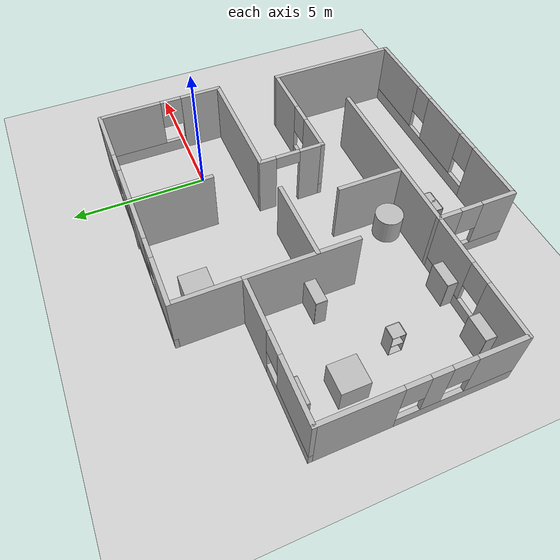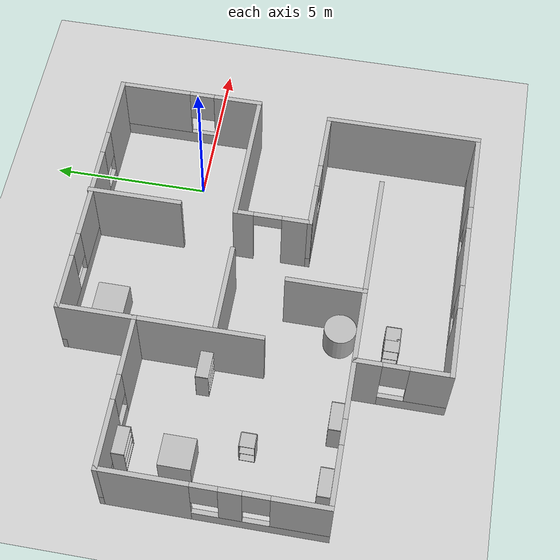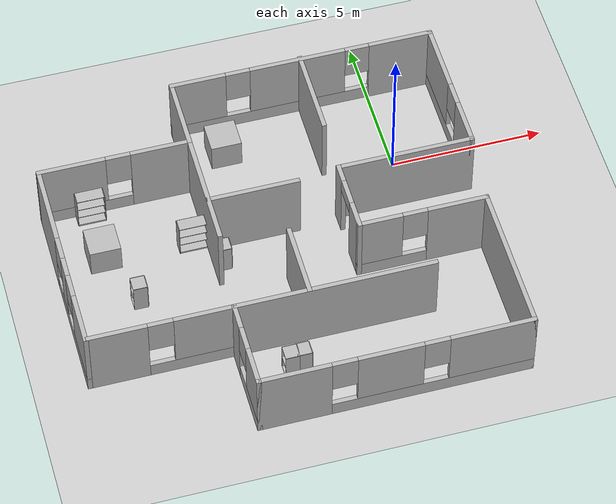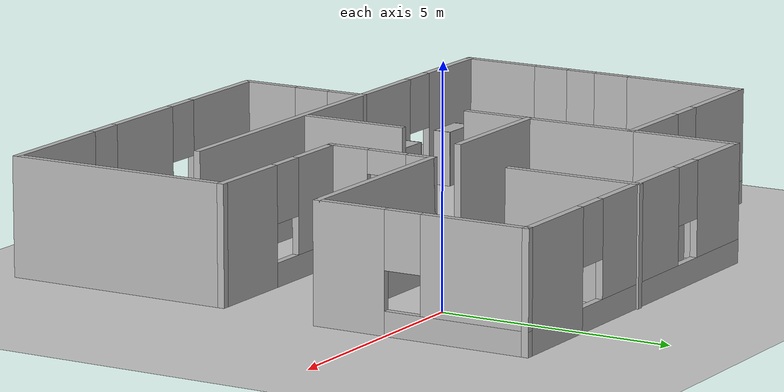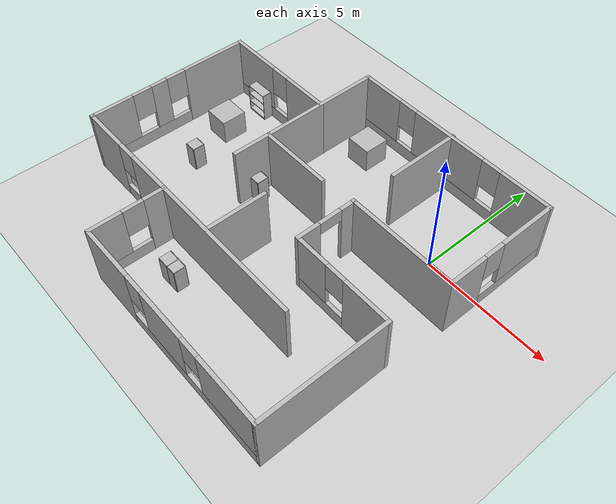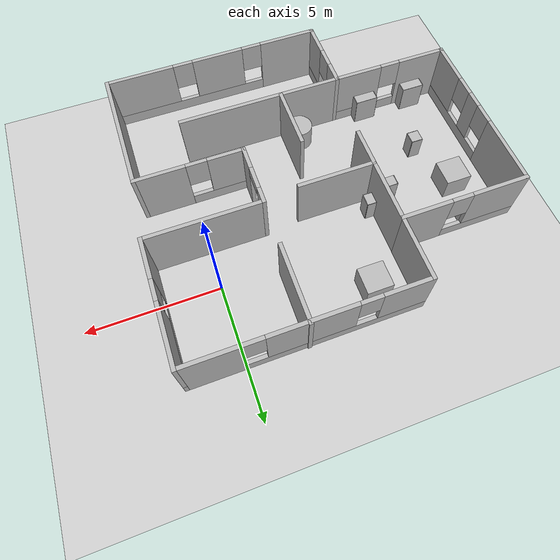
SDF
<sdf version="1.7">
 <world name="default">
  <model name="ground_plane">
   <static>1</static>
   <link name="link">
    <collision name="collision">
     <geometry><plane><normal>0 0 1</normal><size>100 100</size></plane></geometry>
     <surface><friction><ode><mu>100</mu><mu2>50</mu2></ode></friction></surface>
    </collision>
    <visual name="visual">
     <cast_shadows>0</cast_shadows>
     <geometry><plane><normal>0 0 1</normal><size>100 100</size></plane></geometry>
    </visual>
   </link>
  </model>
  <model name="room">
   <pose>-4.625 -2.82814 0 0 -0 0</pose>
   <link name="Wall_0">
    <collision name="Wall_0_Collision">
     <geometry><box><size>4.5 0.15 2.5</size></box></geometry>
     <pose>0 0 1.25 0 -0 0</pose>
    </collision>
    <visual name="Wall_0_Visual">
     <pose>0 0 1.25 0 -0 0</pose>
     <geometry><box><size>4.5 0.15 2.5</size></box></geometry>
     <ambient>1 1 1 1</ambient>
     <meta><layer>0</layer></meta>
    </visual>
    <pose>4.55 1.27814 0 0 -0 0</pose>
   </link>
   <link name="Wall_1">
    <pose>6.725 3.57814 0 0 -0 1.5708</pose>
    <visual name="Wall_1_Visual_0">
     <pose>-1.57759 0 1.25 0 -0 0</pose>
     <geometry><box><size>1.59481 0.15 2.5</size></box></geometry>
     <ambient>1 1 1 1</ambient>
     <meta><layer>0</layer></meta>
    </visual>
    <collision name="Wall_1_Collision_0">
     <geometry><box><size>1.59481 0.15 2.5</size></box></geometry>
     <pose>-1.57759 0 1.25 0 -0 0</pose>
    </collision>
    <visual name="Wall_1_Visual_1">
     <pose>0.797406 0 0.25 0 -0 0</pose>
     <geometry><box><size>3.15519 0.15 0.5</size></box></geometry>
     <ambient>1 1 1 1</ambient>
     <meta><layer>0</layer></meta>
    </visual>
    <collision name="Wall_1_Collision_1">
     <geometry><box><size>3.15519 0.15 0.5</size></box></geometry>
     <pose>0.797406 0 0.25 0 -0 0</pose>
    </collision>
    <visual name="Wall_1_Visual_2">
     <pose>1.19741 0 1.5 0 -0 0</pose>
     <geometry><box><size>2.35519 0.15 2</size></box></geometry>
     <ambient>1 1 1 1</ambient>
     <meta><layer>0</layer></meta>
    </visual>
    <collision name="Wall_1_Collision_2">
     <geometry><box><size>2.35519 0.15 2</size></box></geometry>
     <pose>1.19741 0 1.5 0 -0 0</pose>
    </collision>
    <visual name="Wall_1_Visual_3">
     <pose>-0.380187 0 1.9 0 -0 0</pose>
     <geometry><box><size>0.8 0.15 1.2</size></box></geometry>
     <ambient>1 1 1 1</ambient>
     <meta><layer>0</layer></meta>
    </visual>
    <collision name="Wall_1_Collision_3">
     <geometry><box><size>0.8 0.15 1.2</size></box></geometry>
     <pose>-0.380187 0 1.9 0 -0 0</pose>
    </collision>
   </link>
   <link name="Wall_10">
    <pose>4.425 -1.07186 0 0 -0 3.14159</pose>
    <visual name="Wall_10_Visual_0">
     <pose>-1.13522 0 1.25 0 -0 0</pose>
     <geometry><box><size>1.97956 0.15 2.5</size></box></geometry>
     <ambient>1 1 1 1</ambient>
     <meta><layer>0</layer></meta>
    </visual>
    <collision name="Wall_10_Collision_0">
     <geometry><box><size>1.97956 0.15 2.5</size></box></geometry>
     <pose>-1.13522 0 1.25 0 -0 0</pose>
    </collision>
    <visual name="Wall_10_Visual_1">
     <pose>0.989779 0 0.25 0 -0 0</pose>
     <geometry><box><size>2.27044 0.15 0.5</size></box></geometry>
     <ambient>1 1 1 1</ambient>
     <meta><layer>0</layer></meta>
    </visual>
    <collision name="Wall_10_Collision_1">
     <geometry><box><size>2.27044 0.15 0.5</size></box></geometry>
     <pose>0.989779 0 0.25 0 -0 0</pose>
    </collision>
    <visual name="Wall_10_Visual_2">
     <pose>1.38978 0 1.5 0 -0 0</pose>
     <geometry><box><size>1.47044 0.15 2</size></box></geometry>
     <ambient>1 1 1 1</ambient>
     <meta><layer>0</layer></meta>
    </visual>
    <collision name="Wall_10_Collision_2">
     <geometry><box><size>1.47044 0.15 2</size></box></geometry>
     <pose>1.38978 0 1.5 0 -0 0</pose>
    </collision>
    <visual name="Wall_10_Visual_3">
     <pose>0.254559 0 1.9 0 -0 0</pose>
     <geometry><box><size>0.8 0.15 1.2</size></box></geometry>
     <ambient>1 1 1 1</ambient>
     <meta><layer>0</layer></meta>
    </visual>
    <collision name="Wall_10_Collision_3">
     <geometry><box><size>0.8 0.15 1.2</size></box></geometry>
     <pose>0.254559 0 1.9 0 -0 0</pose>
    </collision>
   </link>
   <link name="Wall_12">
    <pose>2.375 0.103141 0 0 -0 1.5708</pose>
    <visual name="Wall_12_Visual_0">
     <pose>-0.77485 0 1.25 0 -0 0</pose>
     <geometry><box><size>0.950299 0.15 2.5</size></box></geometry>
     <ambient>1 1 1 1</ambient>
     <meta><layer>0</layer></meta>
    </visual>
    <collision name="Wall_12_Collision_0">
     <geometry><box><size>0.950299 0.15 2.5</size></box></geometry>
     <pose>-0.77485 0 1.25 0 -0 0</pose>
    </collision>
    <visual name="Wall_12_Visual_1">
     <pose>0.92515 0 1.25 0 -0 0</pose>
     <geometry><box><size>0.649701 0.15 2.5</size></box></geometry>
     <ambient>1 1 1 1</ambient>
     <meta><layer>0</layer></meta>
    </visual>
    <collision name="Wall_12_Collision_1">
     <geometry><box><size>0.649701 0.15 2.5</size></box></geometry>
     <pose>0.92515 0 1.25 0 -0 0</pose>
    </collision>
    <visual name="Wall_12_Visual_2">
     <pose>0.150299 0 2.25 0 -0 0</pose>
     <geometry><box><size>0.9 0.15 0.5</size></box></geometry>
     <ambient>1 1 1 1</ambient>
     <meta><layer>0</layer></meta>
    </visual>
    <collision name="Wall_12_Collision_2">
     <geometry><box><size>0.9 0.15 0.5</size></box></geometry>
     <pose>0.150299 0 2.25 0 -0 0</pose>
    </collision>
   </link>
   <link name="Wall_14">
    <collision name="Wall_14_Collision">
     <geometry><box><size>4 0.15 2.5</size></box></geometry>
     <pose>0 0 1.25 0 -0 0</pose>
    </collision>
    <visual name="Wall_14_Visual">
     <pose>0 0 1.25 0 -0 0</pose>
     <geometry><box><size>4 0.15 2.5</size></box></geometry>
     <ambient>1 1 1 1</ambient>
     <meta><layer>0</layer></meta>
    </visual>
    <pose>-1.875 1.60314 0 0 -0 -1.5708</pose>
   </link>
   <link name="Wall_16">
    <collision name="Wall_16_Collision">
     <geometry><box><size>3 0.15 2.5</size></box></geometry>
     <pose>0 0 1.25 0 -0 0</pose>
    </collision>
    <visual name="Wall_16_Visual">
     <pose>0 0 1.25 0 -0 0</pose>
     <geometry><box><size>3 0.15 2.5</size></box></geometry>
     <ambient>1 1 1 1</ambient>
     <meta><layer>0</layer></meta>
    </visual>
    <pose>2.38903 4.49686 0 0 -0 -1.5708</pose>
   </link>
   <link name="Wall_18">
    <collision name="Wall_18_Collision">
     <geometry><box><size>6.5 0.15 2.5</size></box></geometry>
     <pose>0 0 1.25 0 -0 0</pose>
    </collision>
    <visual name="Wall_18_Visual">
     <pose>0 0 1.25 0 -0 0</pose>
     <geometry><box><size>6.5 0.15 2.5</size></box></geometry>
     <ambient>1 1 1 1</ambient>
     <meta><layer>0</layer></meta>
    </visual>
    <pose>1.05 -3.07186 0 0 -0 0</pose>
   </link>
   <link name="Wall_2">
    <pose>2.425 5.87814 0 0 -0 3.14159</pose>
    <visual name="Wall_2_Visual_0">
     <pose>-3.30712 0 1.25 0 -0 0</pose>
     <geometry><box><size>2.13576 0.15 2.5</size></box></geometry>
     <ambient>1 1 1 1</ambient>
     <meta><layer>0</layer></meta>
    </visual>
    <collision name="Wall_2_Collision_0">
     <geometry><box><size>2.13576 0.15 2.5</size></box></geometry>
     <pose>-3.30712 0 1.25 0 -0 0</pose>
    </collision>
    <visual name="Wall_2_Visual_1">
     <pose>1.06788 0 0.25 0 -0 0</pose>
     <geometry><box><size>6.61424 0.15 0.5</size></box></geometry>
     <ambient>1 1 1 1</ambient>
     <meta><layer>0</layer></meta>
    </visual>
    <collision name="Wall_2_Collision_1">
     <geometry><box><size>6.61424 0.15 0.5</size></box></geometry>
     <pose>1.06788 0 0.25 0 -0 0</pose>
    </collision>
    <visual name="Wall_2_Visual_2">
     <pose>0.145143 0 1.5 0 -0 0</pose>
     <geometry><box><size>3.16877 0.15 2</size></box></geometry>
     <ambient>1 1 1 1</ambient>
     <meta><layer>0</layer></meta>
    </visual>
    <collision name="Wall_2_Collision_2">
     <geometry><box><size>3.16877 0.15 2</size></box></geometry>
     <pose>0.145143 0 1.5 0 -0 0</pose>
    </collision>
    <visual name="Wall_2_Visual_3">
     <pose>3.45226 0 1.5 0 -0 0</pose>
     <geometry><box><size>1.84547 0.15 2</size></box></geometry>
     <ambient>1 1 1 1</ambient>
     <meta><layer>0</layer></meta>
    </visual>
    <collision name="Wall_2_Collision_3">
     <geometry><box><size>1.84547 0.15 2</size></box></geometry>
     <pose>3.45226 0 1.5 0 -0 0</pose>
    </collision>
    <visual name="Wall_2_Visual_4">
     <pose>-1.83924 0 1.9 0 -0 0</pose>
     <geometry><box><size>0.8 0.15 1.2</size></box></geometry>
     <ambient>1 1 1 1</ambient>
     <meta><layer>0</layer></meta>
    </visual>
    <collision name="Wall_2_Collision_4">
     <geometry><box><size>0.8 0.15 1.2</size></box></geometry>
     <pose>-1.83924 0 1.9 0 -0 0</pose>
    </collision>
    <visual name="Wall_2_Visual_5">
     <pose>2.12953 0 1.9 0 -0 0</pose>
     <geometry><box><size>0.8 0.15 1.2</size></box></geometry>
     <ambient>1 1 1 1</ambient>
     <meta><layer>0</layer></meta>
    </visual>
    <collision name="Wall_2_Collision_5">
     <geometry><box><size>0.8 0.15 1.2</size></box></geometry>
     <pose>2.12953 0 1.9 0 -0 0</pose>
    </collision>
   </link>
   <link name="Wall_20">
    <collision name="Wall_20_Collision">
     <geometry><box><size>3 0.15 2.5</size></box></geometry>
     <pose>0 0 1.25 0 -0 0</pose>
    </collision>
    <visual name="Wall_20_Visual">
     <pose>0 0 1.25 0 -0 0</pose>
     <geometry><box><size>3 0.15 2.5</size></box></geometry>
     <ambient>1 1 1 1</ambient>
     <meta><layer>0</layer></meta>
    </visual>
    <pose>-0.433206 1.10833 0 0 -0 0</pose>
   </link>
   <link name="Wall_22">
    <collision name="Wall_22_Collision">
     <geometry><box><size>2.5 0.15 2.5</size></box></geometry>
     <pose>0 0 1.25 0 -0 0</pose>
    </collision>
    <visual name="Wall_22_Visual">
     <pose>0 0 1.25 0 -0 0</pose>
     <geometry><box><size>2.5 0.15 2.5</size></box></geometry>
     <ambient>1 1 1 1</ambient>
     <meta><layer>0</layer></meta>
    </visual>
    <pose>0.230018 -1.89312 0 0 -0 1.5708</pose>
   </link>
   <link name="Wall_3">
    <collision name="Wall_3_Collision">
     <geometry><box><size>2.5 0.15 2.5</size></box></geometry>
     <pose>0 0 1.25 0 -0 0</pose>
    </collision>
    <visual name="Wall_3_Visual">
     <pose>0 0 1.25 0 -0 0</pose>
     <geometry><box><size>2.5 0.15 2.5</size></box></geometry>
     <ambient>1 1 1 1</ambient>
     <meta><layer>0</layer></meta>
    </visual>
    <pose>-1.875 4.70314 0 0 -0 -1.5708</pose>
   </link>
   <link name="Wall_4">
    <pose>-4.3 3.52814 0 0 -0 3.14159</pose>
    <visual name="Wall_4_Visual_0">
     <pose>-1.50396 0 1.25 0 -0 0</pose>
     <geometry><box><size>1.99209 0.15 2.5</size></box></geometry>
     <ambient>1 1 1 1</ambient>
     <meta><layer>0</layer></meta>
    </visual>
    <collision name="Wall_4_Collision_0">
     <geometry><box><size>1.99209 0.15 2.5</size></box></geometry>
     <pose>-1.50396 0 1.25 0 -0 0</pose>
    </collision>
    <visual name="Wall_4_Visual_1">
     <pose>0.996043 0 0.25 0 -0 0</pose>
     <geometry><box><size>3.00791 0.15 0.5</size></box></geometry>
     <ambient>1 1 1 1</ambient>
     <meta><layer>0</layer></meta>
    </visual>
    <collision name="Wall_4_Collision_1">
     <geometry><box><size>3.00791 0.15 0.5</size></box></geometry>
     <pose>0.996043 0 0.25 0 -0 0</pose>
    </collision>
    <visual name="Wall_4_Visual_2">
     <pose>1.39604 0 1.5 0 -0 0</pose>
     <geometry><box><size>2.20791 0.15 2</size></box></geometry>
     <ambient>1 1 1 1</ambient>
     <meta><layer>0</layer></meta>
    </visual>
    <collision name="Wall_4_Collision_2">
     <geometry><box><size>2.20791 0.15 2</size></box></geometry>
     <pose>1.39604 0 1.5 0 -0 0</pose>
    </collision>
    <visual name="Wall_4_Visual_3">
     <pose>-0.107913 0 1.9 0 -0 0</pose>
     <geometry><box><size>0.8 0.15 1.2</size></box></geometry>
     <ambient>1 1 1 1</ambient>
     <meta><layer>0</layer></meta>
    </visual>
    <collision name="Wall_4_Collision_3">
     <geometry><box><size>0.8 0.15 1.2</size></box></geometry>
     <pose>-0.107913 0 1.9 0 -0 0</pose>
    </collision>
   </link>
   <link name="Wall_5">
    <pose>-6.725 0.228141 0 0 -0 -1.5708</pose>
    <visual name="Wall_5_Visual_0">
     <pose>-2.01057 0 1.25 0 -0 0</pose>
     <geometry><box><size>2.72885 0.15 2.5</size></box></geometry>
     <ambient>1 1 1 1</ambient>
     <meta><layer>0</layer></meta>
    </visual>
    <collision name="Wall_5_Collision_0">
     <geometry><box><size>2.72885 0.15 2.5</size></box></geometry>
     <pose>-2.01057 0 1.25 0 -0 0</pose>
    </collision>
    <visual name="Wall_5_Visual_1">
     <pose>1.36443 0 0.25 0 -0 0</pose>
     <geometry><box><size>4.02115 0.15 0.5</size></box></geometry>
     <ambient>1 1 1 1</ambient>
     <meta><layer>0</layer></meta>
    </visual>
    <collision name="Wall_5_Collision_1">
     <geometry><box><size>4.02115 0.15 0.5</size></box></geometry>
     <pose>1.36443 0 0.25 0 -0 0</pose>
    </collision>
    <visual name="Wall_5_Visual_2">
     <pose>0.493131 0 1.5 0 -0 0</pose>
     <geometry><box><size>0.67856 0.15 2</size></box></geometry>
     <ambient>1 1 1 1</ambient>
     <meta><layer>0</layer></meta>
    </visual>
    <collision name="Wall_5_Collision_2">
     <geometry><box><size>0.67856 0.15 2</size></box></geometry>
     <pose>0.493131 0 1.5 0 -0 0</pose>
    </collision>
    <visual name="Wall_5_Visual_3">
     <pose>2.50371 0 1.5 0 -0 0</pose>
     <geometry><box><size>1.74259 0.15 2</size></box></geometry>
     <ambient>1 1 1 1</ambient>
     <meta><layer>0</layer></meta>
    </visual>
    <collision name="Wall_5_Collision_3">
     <geometry><box><size>1.74259 0.15 2</size></box></geometry>
     <pose>2.50371 0 1.5 0 -0 0</pose>
    </collision>
    <visual name="Wall_5_Visual_4">
     <pose>-0.246149 0 1.9 0 -0 0</pose>
     <geometry><box><size>0.8 0.15 1.2</size></box></geometry>
     <ambient>1 1 1 1</ambient>
     <meta><layer>0</layer></meta>
    </visual>
    <collision name="Wall_5_Collision_4">
     <geometry><box><size>0.8 0.15 1.2</size></box></geometry>
     <pose>-0.246149 0 1.9 0 -0 0</pose>
    </collision>
    <visual name="Wall_5_Visual_5">
     <pose>1.23241 0 1.9 0 -0 0</pose>
     <geometry><box><size>0.8 0.15 1.2</size></box></geometry>
     <ambient>1 1 1 1</ambient>
     <meta><layer>0</layer></meta>
    </visual>
    <collision name="Wall_5_Collision_5">
     <geometry><box><size>0.8 0.15 1.2</size></box></geometry>
     <pose>1.23241 0 1.9 0 -0 0</pose>
    </collision>
   </link>
   <link name="Wall_6">
    <pose>-4.425 -3.07186 0 0 -0 0</pose>
    <visual name="Wall_6_Visual_0">
     <pose>-1.38777 0 1.25 0 -0 0</pose>
     <geometry><box><size>1.97446 0.15 2.5</size></box></geometry>
     <ambient>1 1 1 1</ambient>
     <meta><layer>0</layer></meta>
    </visual>
    <collision name="Wall_6_Collision_0">
     <geometry><box><size>1.97446 0.15 2.5</size></box></geometry>
     <pose>-1.38777 0 1.25 0 -0 0</pose>
    </collision>
    <visual name="Wall_6_Visual_1">
     <pose>0.987228 0 0.25 0 -0 0</pose>
     <geometry><box><size>2.77554 0.15 0.5</size></box></geometry>
     <ambient>1 1 1 1</ambient>
     <meta><layer>0</layer></meta>
    </visual>
    <collision name="Wall_6_Collision_1">
     <geometry><box><size>2.77554 0.15 0.5</size></box></geometry>
     <pose>0.987228 0 0.25 0 -0 0</pose>
    </collision>
    <visual name="Wall_6_Visual_2">
     <pose>1.38723 0 1.5 0 -0 0</pose>
     <geometry><box><size>1.97554 0.15 2</size></box></geometry>
     <ambient>1 1 1 1</ambient>
     <meta><layer>0</layer></meta>
    </visual>
    <collision name="Wall_6_Collision_2">
     <geometry><box><size>1.97554 0.15 2</size></box></geometry>
     <pose>1.38723 0 1.5 0 -0 0</pose>
    </collision>
    <visual name="Wall_6_Visual_3">
     <pose>-0.000544 0 1.9 0 -0 0</pose>
     <geometry><box><size>0.8 0.15 1.2</size></box></geometry>
     <ambient>1 1 1 1</ambient>
     <meta><layer>0</layer></meta>
    </visual>
    <collision name="Wall_6_Collision_3">
     <geometry><box><size>0.8 0.15 1.2</size></box></geometry>
     <pose>-0.000544 0 1.9 0 -0 0</pose>
    </collision>
   </link>
   <link name="Wall_7">
    <pose>-2.125 -4.49686 0 0 -0 -1.5708</pose>
    <visual name="Wall_7_Visual_0">
     <pose>-1.05214 0 1.25 0 -0 0</pose>
     <geometry><box><size>0.895729 0.15 2.5</size></box></geometry>
     <ambient>1 1 1 1</ambient>
     <meta><layer>0</layer></meta>
    </visual>
    <collision name="Wall_7_Collision_0">
     <geometry><box><size>0.895729 0.15 2.5</size></box></geometry>
     <pose>-1.05214 0 1.25 0 -0 0</pose>
    </collision>
    <visual name="Wall_7_Visual_1">
     <pose>0.447864 0 0.25 0 -0 0</pose>
     <geometry><box><size>2.10427 0.15 0.5</size></box></geometry>
     <ambient>1 1 1 1</ambient>
     <meta><layer>0</layer></meta>
    </visual>
    <collision name="Wall_7_Collision_1">
     <geometry><box><size>2.10427 0.15 0.5</size></box></geometry>
     <pose>0.447864 0 0.25 0 -0 0</pose>
    </collision>
    <visual name="Wall_7_Visual_2">
     <pose>0.847864 0 1.5 0 -0 0</pose>
     <geometry><box><size>1.30427 0.15 2</size></box></geometry>
     <ambient>1 1 1 1</ambient>
     <meta><layer>0</layer></meta>
    </visual>
    <collision name="Wall_7_Collision_2">
     <geometry><box><size>1.30427 0.15 2</size></box></geometry>
     <pose>0.847864 0 1.5 0 -0 0</pose>
    </collision>
    <visual name="Wall_7_Visual_3">
     <pose>-0.204271 0 1.9 0 -0 0</pose>
     <geometry><box><size>0.8 0.15 1.2</size></box></geometry>
     <ambient>1 1 1 1</ambient>
     <meta><layer>0</layer></meta>
    </visual>
    <collision name="Wall_7_Collision_3">
     <geometry><box><size>0.8 0.15 1.2</size></box></geometry>
     <pose>-0.204271 0 1.9 0 -0 0</pose>
    </collision>
   </link>
   <link name="Wall_8">
    <pose>2.175 -5.92186 0 0 -0 0</pose>
    <visual name="Wall_8_Visual_0">
     <pose>-3.2051 0 1.25 0 -0 0</pose>
     <geometry><box><size>2.33979 0.15 2.5</size></box></geometry>
     <ambient>1 1 1 1</ambient>
     <meta><layer>0</layer></meta>
    </visual>
    <collision name="Wall_8_Collision_0">
     <geometry><box><size>2.33979 0.15 2.5</size></box></geometry>
     <pose>-3.2051 0 1.25 0 -0 0</pose>
    </collision>
    <visual name="Wall_8_Visual_1">
     <pose>1.1699 0 0.25 0 -0 0</pose>
     <geometry><box><size>6.41021 0.15 0.5</size></box></geometry>
     <ambient>1 1 1 1</ambient>
     <meta><layer>0</layer></meta>
    </visual>
    <collision name="Wall_8_Collision_1">
     <geometry><box><size>6.41021 0.15 0.5</size></box></geometry>
     <pose>1.1699 0 0.25 0 -0 0</pose>
    </collision>
    <visual name="Wall_8_Visual_2">
     <pose>-0.193626 0 1.5 0 -0 0</pose>
     <geometry><box><size>2.08316 0.15 2</size></box></geometry>
     <ambient>1 1 1 1</ambient>
     <meta><layer>0</layer></meta>
    </visual>
    <collision name="Wall_8_Collision_2">
     <geometry><box><size>2.08316 0.15 2</size></box></geometry>
     <pose>-0.193626 0 1.5 0 -0 0</pose>
    </collision>
    <visual name="Wall_8_Visual_3">
     <pose>3.01148 0 1.5 0 -0 0</pose>
     <geometry><box><size>2.72704 0.15 2</size></box></geometry>
     <ambient>1 1 1 1</ambient>
     <meta><layer>0</layer></meta>
    </visual>
    <collision name="Wall_8_Collision_3">
     <geometry><box><size>2.72704 0.15 2</size></box></geometry>
     <pose>3.01148 0 1.5 0 -0 0</pose>
    </collision>
    <visual name="Wall_8_Visual_4">
     <pose>-1.63521 0 1.9 0 -0 0</pose>
     <geometry><box><size>0.8 0.15 1.2</size></box></geometry>
     <ambient>1 1 1 1</ambient>
     <meta><layer>0</layer></meta>
    </visual>
    <collision name="Wall_8_Collision_4">
     <geometry><box><size>0.8 0.15 1.2</size></box></geometry>
     <pose>-1.63521 0 1.9 0 -0 0</pose>
    </collision>
    <visual name="Wall_8_Visual_5">
     <pose>1.24795 0 1.9 0 -0 0</pose>
     <geometry><box><size>0.8 0.15 1.2</size></box></geometry>
     <ambient>1 1 1 1</ambient>
     <meta><layer>0</layer></meta>
    </visual>
    <collision name="Wall_8_Collision_5">
     <geometry><box><size>0.8 0.15 1.2</size></box></geometry>
     <pose>1.24795 0 1.9 0 -0 0</pose>
    </collision>
   </link>
   <link name="Wall_9">
    <collision name="Wall_9_Collision">
     <geometry><box><size>5 0.15 2.5</size></box></geometry>
     <pose>0 0 1.25 0 -0 0</pose>
    </collision>
    <visual name="Wall_9_Visual">
     <pose>0 0 1.25 0 -0 0</pose>
     <geometry><box><size>5 0.15 2.5</size></box></geometry>
     <ambient>1 1 1 1</ambient>
     <meta><layer>0</layer></meta>
    </visual>
    <pose>6.475 -3.49686 0 0 -0 1.5708</pose>
   </link>
   <static>1</static>
  </model>
  <model name="bookshelf">
   <static>1</static>
   <link name="link">
    <inertial><mass>1</mass></inertial>
    <collision name="back">
     <pose>0 0.005 0.6 0 -0 0</pose>
     <geometry><box><size>0.9 0.01 1.2</size></box></geometry>
    </collision>
    <visual name="visual1">
     <pose>0 0.005 0.6 0 -0 0</pose>
     <geometry><box><size>0.9 0.01 1.2</size></box></geometry>
    </visual>
    <collision name="left_side">
     <pose>0.45 -0.195 0.6 0 -0 0</pose>
     <geometry><box><size>0.02 0.4 1.2</size></box></geometry>
    </collision>
    <visual name="visual2">
     <pose>0.45 -0.195 0.6 0 -0 0</pose>
     <geometry><box><size>0.02 0.4 1.2</size></box></geometry>
    </visual>
    <collision name="right_side">
     <pose>-0.45 -0.195 0.6 0 -0 0</pose>
     <geometry><box><size>0.02 0.4 1.2</size></box></geometry>
    </collision>
    <visual name="visual3">
     <pose>-0.45 -0.195 0.6 0 -0 0</pose>
     <geometry><box><size>0.02 0.4 1.2</size></box></geometry>
    </visual>
    <collision name="bottom">
     <pose>0 -0.195 0.03 0 -0 0</pose>
     <geometry><box><size>0.88 0.4 0.06</size></box></geometry>
    </collision>
    <visual name="visual4">
     <pose>0 -0.195 0.03 0 -0 0</pose>
     <geometry><box><size>0.88 0.4 0.06</size></box></geometry>
    </visual>
    <collision name="top">
     <pose>0 -0.195 1.19 0 -0 0</pose>
     <geometry><box><size>0.88 0.4 0.02</size></box></geometry>
    </collision>
    <visual name="visual5">
     <pose>0 -0.195 1.19 0 -0 0</pose>
     <geometry><box><size>0.88 0.4 0.02</size></box></geometry>
    </visual>
    <collision name="low_shelf">
     <pose>0 -0.195 0.43 0 -0 0</pose>
     <geometry><box><size>0.88 0.4 0.02</size></box></geometry>
    </collision>
    <visual name="visual6">
     <pose>0 -0.195 0.43 0 -0 0</pose>
     <geometry><box><size>0.88 0.4 0.02</size></box></geometry>
    </visual>
    <collision name="high_shelf">
     <pose>0 -0.195 0.8 0 -0 0</pose>
     <geometry><box><size>0.88 0.4 0.02</size></box></geometry>
    </collision>
    <visual name="visual7">
     <pose>0 -0.195 0.8 0 -0 0</pose>
     <geometry><box><size>0.88 0.4 0.02</size></box></geometry>
    </visual>
   </link>
   <pose>-10.1033 -5.42318 0 0 -0 0</pose>
  </model>
  <model name="bookshelf_0">
   <static>1</static>
   <link name="link">
    <inertial><mass>1</mass></inertial>
    <collision name="back">
     <pose>0 0.005 0.6 0 -0 0</pose>
     <geometry><box><size>0.9 0.01 1.2</size></box></geometry>
    </collision>
    <visual name="visual1">
     <pose>0 0.005 0.6 0 -0 0</pose>
     <geometry><box><size>0.9 0.01 1.2</size></box></geometry>
    </visual>
    <collision name="left_side">
     <pose>0.45 -0.195 0.6 0 -0 0</pose>
     <geometry><box><size>0.02 0.4 1.2</size></box></geometry>
    </collision>
    <visual name="visual2">
     <pose>0.45 -0.195 0.6 0 -0 0</pose>
     <geometry><box><size>0.02 0.4 1.2</size></box></geometry>
    </visual>
    <collision name="right_side">
     <pose>-0.45 -0.195 0.6 0 -0 0</pose>
     <geometry><box><size>0.02 0.4 1.2</size></box></geometry>
    </collision>
    <visual name="visual3">
     <pose>-0.45 -0.195 0.6 0 -0 0</pose>
     <geometry><box><size>0.02 0.4 1.2</size></box></geometry>
    </visual>
    <collision name="bottom">
     <pose>0 -0.195 0.03 0 -0 0</pose>
     <geometry><box><size>0.88 0.4 0.06</size></box></geometry>
    </collision>
    <visual name="visual4">
     <pose>0 -0.195 0.03 0 -0 0</pose>
     <geometry><box><size>0.88 0.4 0.06</size></box></geometry>
    </visual>
    <collision name="top">
     <pose>0 -0.195 1.19 0 -0 0</pose>
     <geometry><box><size>0.88 0.4 0.02</size></box></geometry>
    </collision>
    <visual name="visual5">
     <pose>0 -0.195 1.19 0 -0 0</pose>
     <geometry><box><size>0.88 0.4 0.02</size></box></geometry>
    </visual>
    <collision name="low_shelf">
     <pose>0 -0.195 0.43 0 -0 0</pose>
     <geometry><box><size>0.88 0.4 0.02</size></box></geometry>
    </collision>
    <visual name="visual6">
     <pose>0 -0.195 0.43 0 -0 0</pose>
     <geometry><box><size>0.88 0.4 0.02</size></box></geometry>
    </visual>
    <collision name="high_shelf">
     <pose>0 -0.195 0.8 0 -0 0</pose>
     <geometry><box><size>0.88 0.4 0.02</size></box></geometry>
    </collision>
    <visual name="visual7">
     <pose>0 -0.195 0.8 0 -0 0</pose>
     <geometry><box><size>0.88 0.4 0.02</size></box></geometry>
    </visual>
   </link>
   <pose>-8.00371 -5.4438 0 0 -0 0</pose>
  </model>
  <model name="cabinet">
   <static>1</static>
   <link name="cabinet_bottom_plate">
    <inertial>
     <pose>0 0 -1 0 -0 0</pose>
     <inertia><ixx>2.05</ixx><ixy>0</ixy><ixz>0</ixz><iyy>2.05</iyy><iyz>0</iyz><izz>2.05</izz></inertia>
     <mass>25</mass>
    </inertial>
    <collision name="cabinet_bottom_plate_geom">
     <pose>0 0 0.01 0 -0 0</pose>
     <geometry><box><size>0.45 0.45 0.02</size></box></geometry>
    </collision>
    <visual name="cabinet_bottom_plate_geom_visual">
     <pose>0 0 0.01 0 -0 0</pose>
     <geometry><box><size>0.45 0.45 0.02</size></box></geometry>
    </visual>
    <collision name="cabinet_bottom_plate_geom_cabinet_back_plate">
     <pose>0.235 0 0.51 0 -0 0</pose>
     <geometry><box><size>0.02 0.45 1.02</size></box></geometry>
    </collision>
    <visual name="cabinet_bottom_plate_geom_cabinet_back_plate_visual">
     <pose>0.235 0 0.51 0 -0 0</pose>
     <geometry><box><size>0.02 0.45 1.02</size></box></geometry>
    </visual>
    <collision name="cabinet_bottom_plate_geom_cabinet_left_plate">
     <pose>0 0.235 0.51 0 -0 0</pose>
     <geometry><box><size>0.45 0.02 1.02</size></box></geometry>
    </collision>
    <visual name="cabinet_bottom_plate_geom_cabinet_left_plate_visual">
     <pose>0 0.235 0.51 0 -0 0</pose>
     <geometry><box><size>0.45 0.02 1.02</size></box></geometry>
    </visual>
    <collision name="cabinet_bottom_plate_geom_cabinet_middle_plate">
     <pose>0 0 0.51 0 -0 0</pose>
     <geometry><box><size>0.45 0.45 0.02</size></box></geometry>
    </collision>
    <visual name="cabinet_bottom_plate_geom_cabinet_middle_plate_visual">
     <pose>0 0 0.51 0 -0 0</pose>
     <geometry><box><size>0.45 0.45 0.02</size></box></geometry>
    </visual>
    <collision name="cabinet_bottom_plate_geom_cabinet_right_plate">
     <pose>0 -0.235 0.51 0 -0 0</pose>
     <geometry><box><size>0.45 0.02 1.02</size></box></geometry>
    </collision>
    <visual name="cabinet_bottom_plate_geom_cabinet_right_plate_visual">
     <pose>0 -0.235 0.51 0 -0 0</pose>
     <geometry><box><size>0.45 0.02 1.02</size></box></geometry>
    </visual>
    <collision name="cabinet_bottom_plate_geom_cabinet_top_plate">
     <pose>0 0 1.01 0 -0 0</pose>
     <geometry><box><size>0.45 0.45 0.02</size></box></geometry>
    </collision>
    <visual name="cabinet_bottom_plate_geom_cabinet_top_plate_visual">
     <pose>0 0 1.01 0 -0 0</pose>
     <geometry><box><size>0.45 0.45 0.02</size></box></geometry>
    </visual>
   </link>
   <pose>-9.13971 -3.19511 0 0 -0 0</pose>
  </model>
  <model name="bookshelf_1">
   <static>1</static>
   <link name="link">
    <inertial><mass>1</mass></inertial>
    <collision name="back">
     <pose>0 0.005 0.6 0 -0 0</pose>
     <geometry><box><size>0.9 0.01 1.2</size></box></geometry>
    </collision>
    <visual name="visual1">
     <pose>0 0.005 0.6 0 -0 0</pose>
     <geometry><box><size>0.9 0.01 1.2</size></box></geometry>
    </visual>
    <collision name="left_side">
     <pose>0.45 -0.195 0.6 0 -0 0</pose>
     <geometry><box><size>0.02 0.4 1.2</size></box></geometry>
    </collision>
    <visual name="visual2">
     <pose>0.45 -0.195 0.6 0 -0 0</pose>
     <geometry><box><size>0.02 0.4 1.2</size></box></geometry>
    </visual>
    <collision name="right_side">
     <pose>-0.45 -0.195 0.6 0 -0 0</pose>
     <geometry><box><size>0.02 0.4 1.2</size></box></geometry>
    </collision>
    <visual name="visual3">
     <pose>-0.45 -0.195 0.6 0 -0 0</pose>
     <geometry><box><size>0.02 0.4 1.2</size></box></geometry>
    </visual>
    <collision name="bottom">
     <pose>0 -0.195 0.03 0 -0 0</pose>
     <geometry><box><size>0.88 0.4 0.06</size></box></geometry>
    </collision>
    <visual name="visual4">
     <pose>0 -0.195 0.03 0 -0 0</pose>
     <geometry><box><size>0.88 0.4 0.06</size></box></geometry>
    </visual>
    <collision name="top">
     <pose>0 -0.195 1.19 0 -0 0</pose>
     <geometry><box><size>0.88 0.4 0.02</size></box></geometry>
    </collision>
    <visual name="visual5">
     <pose>0 -0.195 1.19 0 -0 0</pose>
     <geometry><box><size>0.88 0.4 0.02</size></box></geometry>
    </visual>
    <collision name="low_shelf">
     <pose>0 -0.195 0.43 0 -0 0</pose>
     <geometry><box><size>0.88 0.4 0.02</size></box></geometry>
    </collision>
    <visual name="visual6">
     <pose>0 -0.195 0.43 0 -0 0</pose>
     <geometry><box><size>0.88 0.4 0.02</size></box></geometry>
    </visual>
    <collision name="high_shelf">
     <pose>0 -0.195 0.8 0 -0 0</pose>
     <geometry><box><size>0.88 0.4 0.02</size></box></geometry>
    </collision>
    <visual name="visual7">
     <pose>0 -0.195 0.8 0 -0 0</pose>
     <geometry><box><size>0.88 0.4 0.02</size></box></geometry>
    </visual>
   </link>
   <pose>-9.85971 0.62305 0 0 -0 0</pose>
  </model>
  <model name="bookshelf_2">
   <static>1</static>
   <link name="link">
    <inertial><mass>1</mass></inertial>
    <collision name="back">
     <pose>0 0.005 0.6 0 -0 0</pose>
     <geometry><box><size>0.9 0.01 1.2</size></box></geometry>
    </collision>
    <visual name="visual1">
     <pose>0 0.005 0.6 0 -0 0</pose>
     <geometry><box><size>0.9 0.01 1.2</size></box></geometry>
    </visual>
    <collision name="left_side">
     <pose>0.45 -0.195 0.6 0 -0 0</pose>
     <geometry><box><size>0.02 0.4 1.2</size></box></geometry>
    </collision>
    <visual name="visual2">
     <pose>0.45 -0.195 0.6 0 -0 0</pose>
     <geometry><box><size>0.02 0.4 1.2</size></box></geometry>
    </visual>
    <collision name="right_side">
     <pose>-0.45 -0.195 0.6 0 -0 0</pose>
     <geometry><box><size>0.02 0.4 1.2</size></box></geometry>
    </collision>
    <visual name="visual3">
     <pose>-0.45 -0.195 0.6 0 -0 0</pose>
     <geometry><box><size>0.02 0.4 1.2</size></box></geometry>
    </visual>
    <collision name="bottom">
     <pose>0 -0.195 0.03 0 -0 0</pose>
     <geometry><box><size>0.88 0.4 0.06</size></box></geometry>
    </collision>
    <visual name="visual4">
     <pose>0 -0.195 0.03 0 -0 0</pose>
     <geometry><box><size>0.88 0.4 0.06</size></box></geometry>
    </visual>
    <collision name="top">
     <pose>0 -0.195 1.19 0 -0 0</pose>
     <geometry><box><size>0.88 0.4 0.02</size></box></geometry>
    </collision>
    <visual name="visual5">
     <pose>0 -0.195 1.19 0 -0 0</pose>
     <geometry><box><size>0.88 0.4 0.02</size></box></geometry>
    </visual>
    <collision name="low_shelf">
     <pose>0 -0.195 0.43 0 -0 0</pose>
     <geometry><box><size>0.88 0.4 0.02</size></box></geometry>
    </collision>
    <visual name="visual6">
     <pose>0 -0.195 0.43 0 -0 0</pose>
     <geometry><box><size>0.88 0.4 0.02</size></box></geometry>
    </visual>
    <collision name="high_shelf">
     <pose>0 -0.195 0.8 0 -0 0</pose>
     <geometry><box><size>0.88 0.4 0.02</size></box></geometry>
    </collision>
    <visual name="visual7">
     <pose>0 -0.195 0.8 0 -0 0</pose>
     <geometry><box><size>0.88 0.4 0.02</size></box></geometry>
    </visual>
   </link>
   <pose>-7.01224 -1.28845 0 0 -0 0</pose>
  </model>
  <model name="unit_box">
   <pose>-9.84962 -1.23182 0.5 0 -0 0</pose>
   <link name="link">
    <inertial>
     <mass>1</mass>
     <inertia>
      <ixx>0.166667</ixx>
      <ixy>0</ixy>
      <ixz>0</ixz>
      <iyy>0.166667</iyy>
      <iyz>0</iyz>
      <izz>0.166667</izz>
     </inertia>
    </inertial>
    <collision name="collision"><geometry><box><size>1 1 1</size></box></geometry></collision>
    <visual name="visual"><geometry><box><size>1 1 1</size></box></geometry></visual>
   </link>
  </model>
  <model name="unit_cylinder">
   <pose>-4.97663 -5.32499 0.499992 -3e-06 4e-06 0</pose>
   <link name="link">
    <inertial>
     <mass>1</mass>
     <inertia><ixx>0.145833</ixx><ixy>0</ixy><ixz>0</ixz><iyy>0.145833</iyy><iyz>0</iyz><izz>0.125</izz></inertia>
    </inertial>
    <collision name="collision">
     <geometry><cylinder><radius>0.5</radius><length>1</length></cylinder></geometry>
    </collision>
    <visual name="visual">
     <geometry><cylinder><radius>0.5</radius><length>1</length></cylinder></geometry>
    </visual>
   </link>
  </model>
  <model name="unit_box_0">
   <pose>-5.15311 1.86707 0.5 0 -0 0</pose>
   <link name="link">
    <inertial>
     <mass>1</mass>
     <inertia>
      <ixx>0.166667</ixx>
      <ixy>0</ixy>
      <ixz>0</ixz>
      <iyy>0.166667</iyy>
      <iyz>0</iyz>
      <izz>0.166667</izz>
     </inertia>
    </inertial>
    <collision name="collision"><geometry><box><size>1 1 1</size></box></geometry></collision>
    <visual name="visual"><geometry><box><size>1 1 1</size></box></geometry></visual>
   </link>
  </model>
  <model name="cabinet_0">
   <static>1</static>
   <link name="cabinet_bottom_plate">
    <inertial>
     <pose>0 0 -1 0 -0 0</pose>
     <inertia><ixx>2.05</ixx><ixy>0</ixy><ixz>0</ixz><iyy>2.05</iyy><iyz>0</iyz><izz>2.05</izz></inertia>
     <mass>25</mass>
    </inertial>
    <collision name="cabinet_bottom_plate_geom">
     <pose>0 0 0.01 0 -0 0</pose>
     <geometry><box><size>0.45 0.45 0.02</size></box></geometry>
    </collision>
    <visual name="cabinet_bottom_plate_geom_visual">
     <pose>0 0 0.01 0 -0 0</pose>
     <geometry><box><size>0.45 0.45 0.02</size></box></geometry>
    </visual>
    <collision name="cabinet_bottom_plate_geom_cabinet_back_plate">
     <pose>0.235 0 0.51 0 -0 0</pose>
     <geometry><box><size>0.02 0.45 1.02</size></box></geometry>
    </collision>
    <visual name="cabinet_bottom_plate_geom_cabinet_back_plate_visual">
     <pose>0.235 0 0.51 0 -0 0</pose>
     <geometry><box><size>0.02 0.45 1.02</size></box></geometry>
    </visual>
    <collision name="cabinet_bottom_plate_geom_cabinet_left_plate">
     <pose>0 0.235 0.51 0 -0 0</pose>
     <geometry><box><size>0.45 0.02 1.02</size></box></geometry>
    </collision>
    <visual name="cabinet_bottom_plate_geom_cabinet_left_plate_visual">
     <pose>0 0.235 0.51 0 -0 0</pose>
     <geometry><box><size>0.45 0.02 1.02</size></box></geometry>
    </visual>
    <collision name="cabinet_bottom_plate_geom_cabinet_middle_plate">
     <pose>0 0 0.51 0 -0 0</pose>
     <geometry><box><size>0.45 0.45 0.02</size></box></geometry>
    </collision>
    <visual name="cabinet_bottom_plate_geom_cabinet_middle_plate_visual">
     <pose>0 0 0.51 0 -0 0</pose>
     <geometry><box><size>0.45 0.45 0.02</size></box></geometry>
    </visual>
    <collision name="cabinet_bottom_plate_geom_cabinet_right_plate">
     <pose>0 -0.235 0.51 0 -0 0</pose>
     <geometry><box><size>0.45 0.02 1.02</size></box></geometry>
    </collision>
    <visual name="cabinet_bottom_plate_geom_cabinet_right_plate_visual">
     <pose>0 -0.235 0.51 0 -0 0</pose>
     <geometry><box><size>0.45 0.02 1.02</size></box></geometry>
    </visual>
    <collision name="cabinet_bottom_plate_geom_cabinet_top_plate">
     <pose>0 0 1.01 0 -0 0</pose>
     <geometry><box><size>0.45 0.45 0.02</size></box></geometry>
    </collision>
    <visual name="cabinet_bottom_plate_geom_cabinet_top_plate_visual">
     <pose>0 0 1.01 0 -0 0</pose>
     <geometry><box><size>0.45 0.45 0.02</size></box></geometry>
    </visual>
   </link>
   <pose>-5.27395 -6.95332 0 0 -0 0</pose>
  </model>
  <model name="cabinet_1">
   <static>1</static>
   <link name="cabinet_bottom_plate">
    <inertial>
     <pose>0 0 -1 0 -0 0</pose>
     <inertia><ixx>2.05</ixx><ixy>0</ixy><ixz>0</ixz><iyy>2.05</iyy><iyz>0</iyz><izz>2.05</izz></inertia>
     <mass>25</mass>
    </inertial>
    <collision name="cabinet_bottom_plate_geom">
     <pose>0 0 0.01 0 -0 0</pose>
     <geometry><box><size>0.45 0.45 0.02</size></box></geometry>
    </collision>
    <visual name="cabinet_bottom_plate_geom_visual">
     <pose>0 0 0.01 0 -0 0</pose>
     <geometry><box><size>0.45 0.45 0.02</size></box></geometry>
    </visual>
    <collision name="cabinet_bottom_plate_geom_cabinet_back_plate">
     <pose>0.235 0 0.51 0 -0 0</pose>
     <geometry><box><size>0.02 0.45 1.02</size></box></geometry>
    </collision>
    <visual name="cabinet_bottom_plate_geom_cabinet_back_plate_visual">
     <pose>0.235 0 0.51 0 -0 0</pose>
     <geometry><box><size>0.02 0.45 1.02</size></box></geometry>
    </visual>
    <collision name="cabinet_bottom_plate_geom_cabinet_left_plate">
     <pose>0 0.235 0.51 0 -0 0</pose>
     <geometry><box><size>0.45 0.02 1.02</size></box></geometry>
    </collision>
    <visual name="cabinet_bottom_plate_geom_cabinet_left_plate_visual">
     <pose>0 0.235 0.51 0 -0 0</pose>
     <geometry><box><size>0.45 0.02 1.02</size></box></geometry>
    </visual>
    <collision name="cabinet_bottom_plate_geom_cabinet_middle_plate">
     <pose>0 0 0.51 0 -0 0</pose>
     <geometry><box><size>0.45 0.45 0.02</size></box></geometry>
    </collision>
    <visual name="cabinet_bottom_plate_geom_cabinet_middle_plate_visual">
     <pose>0 0 0.51 0 -0 0</pose>
     <geometry><box><size>0.45 0.45 0.02</size></box></geometry>
    </visual>
    <collision name="cabinet_bottom_plate_geom_cabinet_right_plate">
     <pose>0 -0.235 0.51 0 -0 0</pose>
     <geometry><box><size>0.45 0.02 1.02</size></box></geometry>
    </collision>
    <visual name="cabinet_bottom_plate_geom_cabinet_right_plate_visual">
     <pose>0 -0.235 0.51 0 -0 0</pose>
     <geometry><box><size>0.45 0.02 1.02</size></box></geometry>
    </visual>
    <collision name="cabinet_bottom_plate_geom_cabinet_top_plate">
     <pose>0 0 1.01 0 -0 0</pose>
     <geometry><box><size>0.45 0.45 0.02</size></box></geometry>
    </collision>
    <visual name="cabinet_bottom_plate_geom_cabinet_top_plate_visual">
     <pose>0 0 1.01 0 -0 0</pose>
     <geometry><box><size>0.45 0.45 0.02</size></box></geometry>
    </visual>
   </link>
   <pose>-4.88076 -6.9469 0 0 -0 0</pose>
  </model>
  <model name="cabinet_3">
   <static>1</static>
   <link name="cabinet_bottom_plate">
    <inertial>
     <pose>0 0 -1 0 -0 0</pose>
     <inertia><ixx>2.05</ixx><ixy>0</ixy><ixz>0</ixz><iyy>2.05</iyy><iyz>0</iyz><izz>2.05</izz></inertia>
     <mass>25</mass>
    </inertial>
    <collision name="cabinet_bottom_plate_geom">
     <pose>0 0 0.01 0 -0 0</pose>
     <geometry><box><size>0.45 0.45 0.02</size></box></geometry>
    </collision>
    <visual name="cabinet_bottom_plate_geom_visual">
     <pose>0 0 0.01 0 -0 0</pose>
     <geometry><box><size>0.45 0.45 0.02</size></box></geometry>
    </visual>
    <collision name="cabinet_bottom_plate_geom_cabinet_back_plate">
     <pose>0.235 0 0.51 0 -0 0</pose>
     <geometry><box><size>0.02 0.45 1.02</size></box></geometry>
    </collision>
    <visual name="cabinet_bottom_plate_geom_cabinet_back_plate_visual">
     <pose>0.235 0 0.51 0 -0 0</pose>
     <geometry><box><size>0.02 0.45 1.02</size></box></geometry>
    </visual>
    <collision name="cabinet_bottom_plate_geom_cabinet_left_plate">
     <pose>0 0.235 0.51 0 -0 0</pose>
     <geometry><box><size>0.45 0.02 1.02</size></box></geometry>
    </collision>
    <visual name="cabinet_bottom_plate_geom_cabinet_left_plate_visual">
     <pose>0 0.235 0.51 0 -0 0</pose>
     <geometry><box><size>0.45 0.02 1.02</size></box></geometry>
    </visual>
    <collision name="cabinet_bottom_plate_geom_cabinet_middle_plate">
     <pose>0 0 0.51 0 -0 0</pose>
     <geometry><box><size>0.45 0.45 0.02</size></box></geometry>
    </collision>
    <visual name="cabinet_bottom_plate_geom_cabinet_middle_plate_visual">
     <pose>0 0 0.51 0 -0 0</pose>
     <geometry><box><size>0.45 0.45 0.02</size></box></geometry>
    </visual>
    <collision name="cabinet_bottom_plate_geom_cabinet_right_plate">
     <pose>0 -0.235 0.51 0 -0 0</pose>
     <geometry><box><size>0.45 0.02 1.02</size></box></geometry>
    </collision>
    <visual name="cabinet_bottom_plate_geom_cabinet_right_plate_visual">
     <pose>0 -0.235 0.51 0 -0 0</pose>
     <geometry><box><size>0.45 0.02 1.02</size></box></geometry>
    </visual>
    <collision name="cabinet_bottom_plate_geom_cabinet_top_plate">
     <pose>0 0 1.01 0 -0 0</pose>
     <geometry><box><size>0.45 0.45 0.02</size></box></geometry>
    </collision>
    <visual name="cabinet_bottom_plate_geom_cabinet_top_plate_visual">
     <pose>0 0 1.01 0 -0 0</pose>
     <geometry><box><size>0.45 0.45 0.02</size></box></geometry>
    </visual>
   </link>
   <pose>-6.25226 -2.43941 0 0 -0 0</pose>
  </model>
  <model name="cabinet_7">
   <static>1</static>
   <link name="cabinet_bottom_plate">
    <inertial>
     <pose>0 0 -1 0 -0 0</pose>
     <inertia><ixx>2.05</ixx><ixy>0</ixy><ixz>0</ixz><iyy>2.05</iyy><iyz>0</iyz><izz>2.05</izz></inertia>
     <mass>25</mass>
    </inertial>
    <collision name="cabinet_bottom_plate_geom">
     <pose>0 0 0.01 0 -0 0</pose>
     <geometry><box><size>0.45 0.45 0.02</size></box></geometry>
    </collision>
    <visual name="cabinet_bottom_plate_geom_visual">
     <pose>0 0 0.01 0 -0 0</pose>
     <geometry><box><size>0.45 0.45 0.02</size></box></geometry>
    </visual>
    <collision name="cabinet_bottom_plate_geom_cabinet_back_plate">
     <pose>0.235 0 0.51 0 -0 0</pose>
     <geometry><box><size>0.02 0.45 1.02</size></box></geometry>
    </collision>
    <visual name="cabinet_bottom_plate_geom_cabinet_back_plate_visual">
     <pose>0.235 0 0.51 0 -0 0</pose>
     <geometry><box><size>0.02 0.45 1.02</size></box></geometry>
    </visual>
    <collision name="cabinet_bottom_plate_geom_cabinet_left_plate">
     <pose>0 0.235 0.51 0 -0 0</pose>
     <geometry><box><size>0.45 0.02 1.02</size></box></geometry>
    </collision>
    <visual name="cabinet_bottom_plate_geom_cabinet_left_plate_visual">
     <pose>0 0.235 0.51 0 -0 0</pose>
     <geometry><box><size>0.45 0.02 1.02</size></box></geometry>
    </visual>
    <collision name="cabinet_bottom_plate_geom_cabinet_middle_plate">
     <pose>0 0 0.51 0 -0 0</pose>
     <geometry><box><size>0.45 0.45 0.02</size></box></geometry>
    </collision>
    <visual name="cabinet_bottom_plate_geom_cabinet_middle_plate_visual">
     <pose>0 0 0.51 0 -0 0</pose>
     <geometry><box><size>0.45 0.45 0.02</size></box></geometry>
    </visual>
    <collision name="cabinet_bottom_plate_geom_cabinet_right_plate">
     <pose>0 -0.235 0.51 0 -0 0</pose>
     <geometry><box><size>0.45 0.02 1.02</size></box></geometry>
    </collision>
    <visual name="cabinet_bottom_plate_geom_cabinet_right_plate_visual">
     <pose>0 -0.235 0.51 0 -0 0</pose>
     <geometry><box><size>0.45 0.02 1.02</size></box></geometry>
    </visual>
    <collision name="cabinet_bottom_plate_geom_cabinet_top_plate">
     <pose>0 0 1.01 0 -0 0</pose>
     <geometry><box><size>0.45 0.45 0.02</size></box></geometry>
    </collision>
    <visual name="cabinet_bottom_plate_geom_cabinet_top_plate_visual">
     <pose>0 0 1.01 0 -0 0</pose>
     <geometry><box><size>0.45 0.45 0.02</size></box></geometry>
    </visual>
   </link>
   <pose>-6.29668 -1.12518 0 0 -0 0</pose>
  </model>
 </world>
</sdf>
